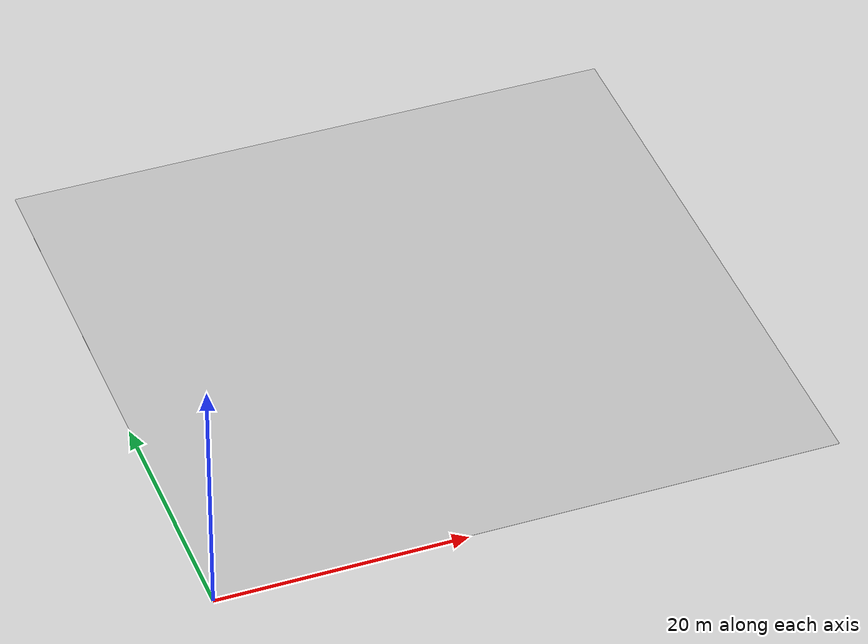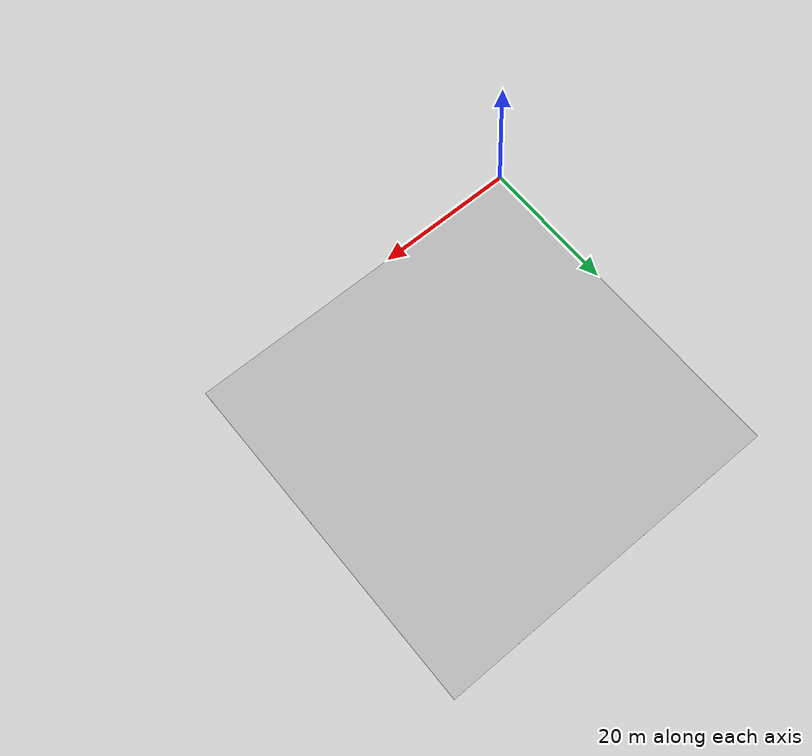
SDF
<?xml version='1.0'?>
<sdf version='1.4'>
  <model name="heliport">
  <static>true</static>
    <link name='base_body'>
      <pose>0 0 .1 0 0 0</pose>
       <collision name='collision'>
        <geometry>
          <mesh>
            <uri>model://heliport/meshes/heliport.dae</uri>
            <scale>0.02 0.02 0.02</scale>
          </mesh>
        </geometry>
      </collision>
      <visual name='visual'>
        <geometry>
          <mesh>
            <uri>model://heliport/meshes/heliport.dae</uri>
            <scale>1.0 1.0 1.0</scale>
          </mesh>
        </geometry>
      </visual>
    </link>
  </model>
</sdf>
